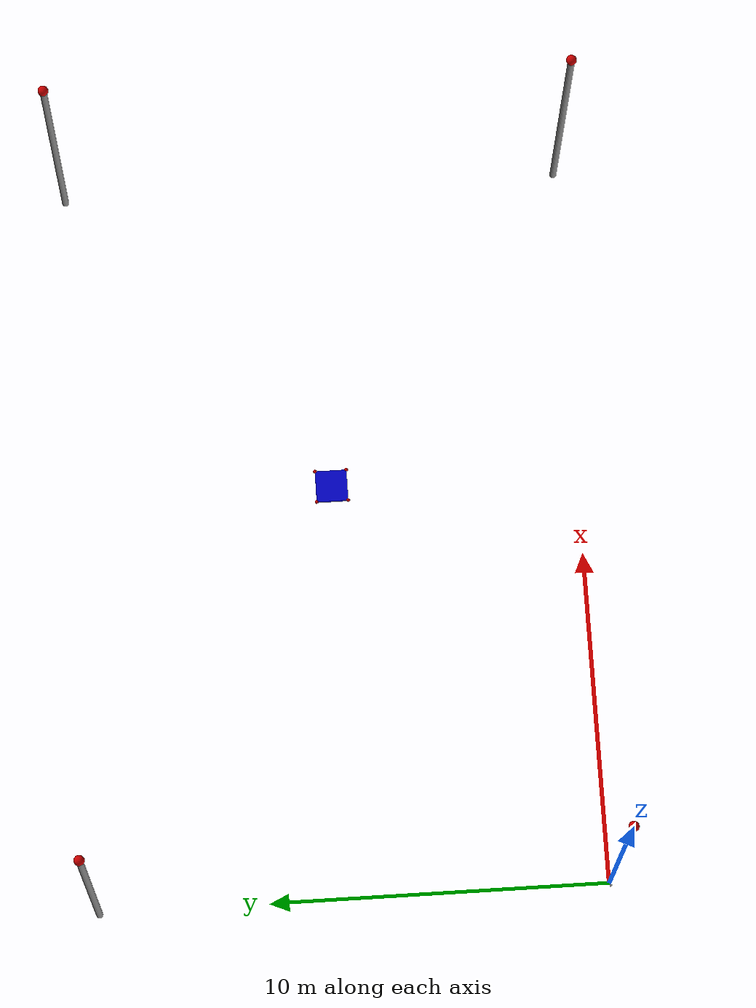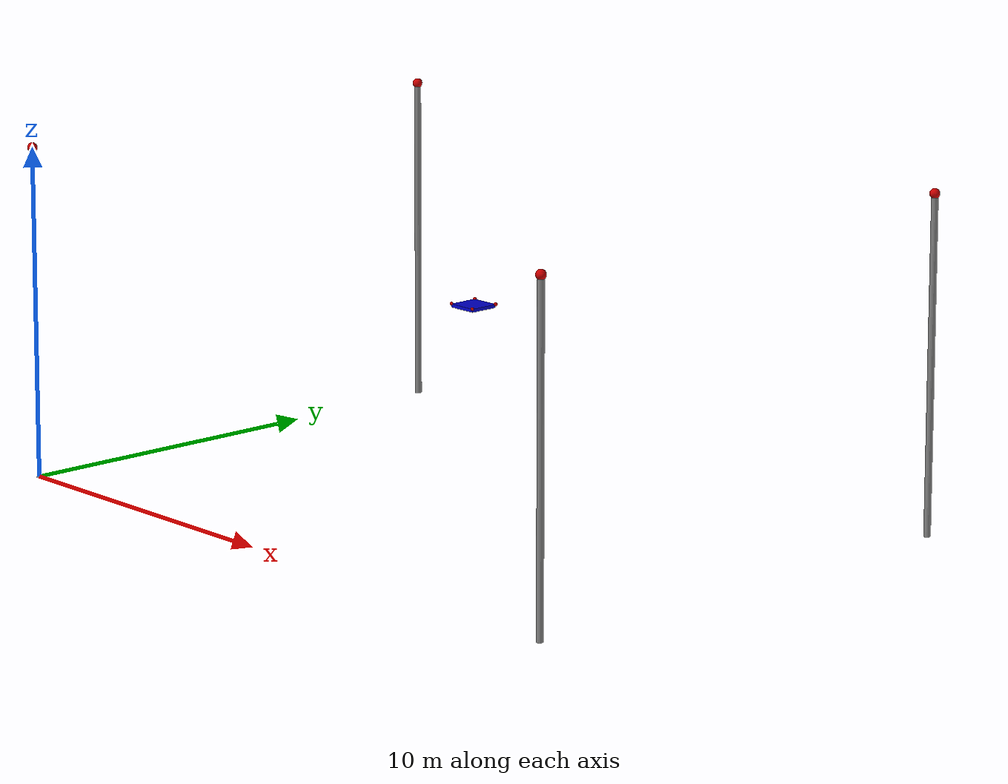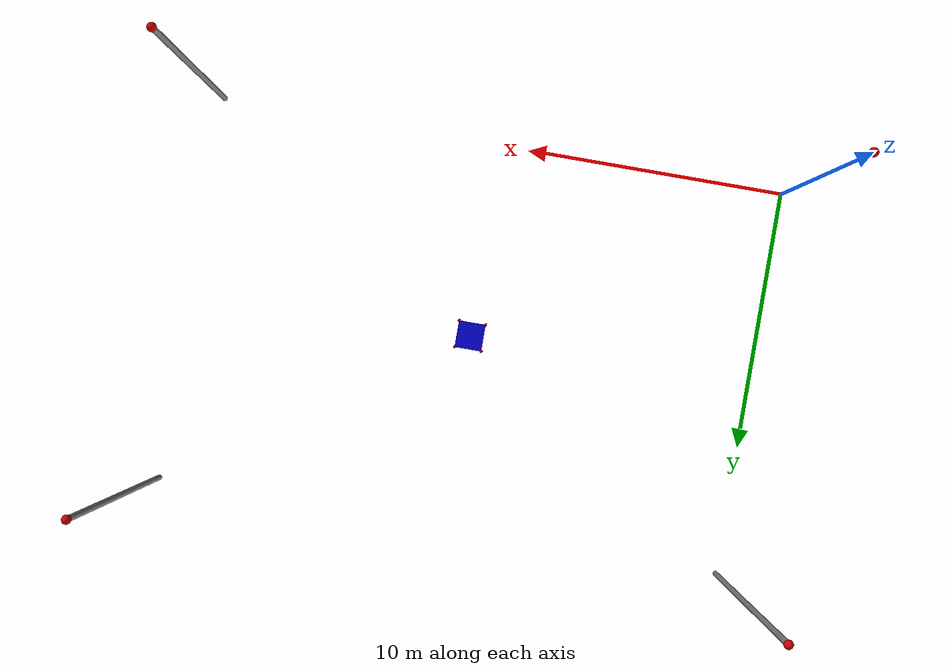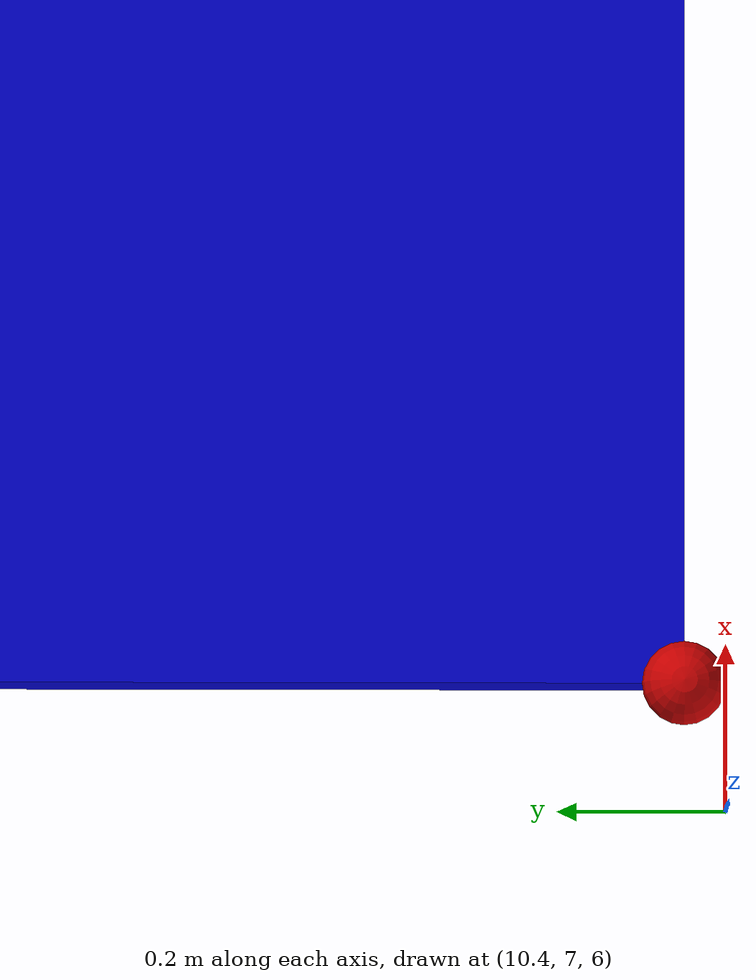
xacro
<?xml version="1.0"?>
<robot xmlns:xacro="http://www.ros.org/wiki/xacro" name="skycam">

  <!-- PROPIEDADES -->
  <xacro:property name="stadium_len" value="22.0"/>
  <xacro:property name="stadium_width" value="15.0"/>
  <xacro:property name="stadium_height" value="10.0"/>

  <xacro:property name="p_size" value="0.9"/>
  <xacro:property name="p_mass" value="570.0"/>

  <!-- MATERIALES -->
  <material name="gray">
    <color rgba="0.5 0.5 0.5 1.0"/>
  </material>

  <material name="blue">
    <color rgba="0.0 0.0 0.8 1.0"/>
  </material>

  <material name="red">
    <color rgba="0.8 0.0 0.0 1.0"/>
  </material>

  <!-- WORLD -->
  <link name="world"/>

  <!-- MACRO: POSTES + ANCLAJES -->
  <xacro:macro name="anchor_pole" params="name x y">
    <link name="pole_${name}">
      <visual>
        <geometry>
          <cylinder radius="0.1" length="${stadium_height}"/>
        </geometry>
        <material name="gray"/>
      </visual>
      <collision>
        <geometry>
          <cylinder radius="0.1" length="${stadium_height}"/>
        </geometry>
      </collision>
      <inertial>
        <mass value="1.0"/>
        <inertia ixx="0.01" ixy="0" ixz="0" iyy="0.01" iyz="0" izz="0.01"/>
      </inertial>
    </link>

    <joint name="world_to_pole_${name}" type="fixed">
      <parent link="world"/>
      <child link="pole_${name}"/>
      <origin xyz="${x} ${y} ${stadium_height/2}"/>
    </joint>

    <link name="anchor_${name}">
      <visual>
        <geometry>
          <sphere radius="0.15"/>
        </geometry>
        <material name="red"/>
      </visual>
    </link>

    <joint name="pole_to_anchor_${name}" type="fixed">
      <parent link="pole_${name}"/>
      <child link="anchor_${name}"/>
      <origin xyz="0 0 ${stadium_height/2}"/>
    </joint>
  </xacro:macro>

  <!-- POSTES -->
  <xacro:anchor_pole name="1" x="0" y="0"/>
  <xacro:anchor_pole name="2" x="${stadium_len}" y="0"/>
  <xacro:anchor_pole name="3" x="${stadium_len}" y="${stadium_width}"/>
  <xacro:anchor_pole name="4" x="0" y="${stadium_width}"/>

  <!-- PLATAFORMA -->
  <link name="platform">
    <inertial>
      <mass value="${p_mass}"/>
      <origin xyz="0 0 0"/>
      <inertia
        ixx="38.95" ixy="0" ixz="0"
        iyy="38.95" iyz="0"
        izz="76.95"/>
    </inertial>

    <visual>
      <geometry>
        <box size="${p_size} ${p_size} 0.1"/>
      </geometry>
      <material name="blue"/>
    </visual>

    <collision>
      <geometry>
        <box size="${p_size} ${p_size} 0.1"/>
      </geometry>
    </collision>
  </link>

  <!-- GAZEBO: PLATAFORMA FÍSICA -->
  <gazebo reference="platform">
    <gravity>true</gravity>
    <selfCollide>false</selfCollide>
    <static>false</static>
    <pose>11 7.5 6 0 0 0</pose>

    <plugin name="gazebo_ros2_control" filename="libgazebo_ros2_control.so"/>

  </gazebo>

  <!-- JOINT SOLO PARA TF / RVIZ -->
  <joint name="world_to_platform" type="floating">
    <parent link="world"/>
    <child link="platform"/>
    <origin xyz="11 7.5 6"/>
  </joint>

  <!-- ANCLAJES EN PLATAFORMA -->
  <xacro:macro name="platform_anchor" params="name x y z">
    <link name="platform_anchor_${name}">
      <visual>
        <geometry>
          <sphere radius="0.05"/>
        </geometry>
        <material name="red"/>
      </visual>
    </link>

    <joint name="platform_to_anchor_${name}" type="fixed">
      <parent link="platform"/>
      <child link="platform_anchor_${name}"/>
      <origin xyz="${x} ${y} ${z}"/>
    </joint>
  </xacro:macro>

  <xacro:platform_anchor name="1" x=" 0.45" y=" 0.45" z="0.05"/>
  <xacro:platform_anchor name="2" x="-0.45" y=" 0.45" z="0.05"/>
  <xacro:platform_anchor name="3" x="-0.45" y="-0.45" z="0.05"/>
  <xacro:platform_anchor name="4" x=" 0.45" y="-0.45" z="0.05"/>

</robot>
